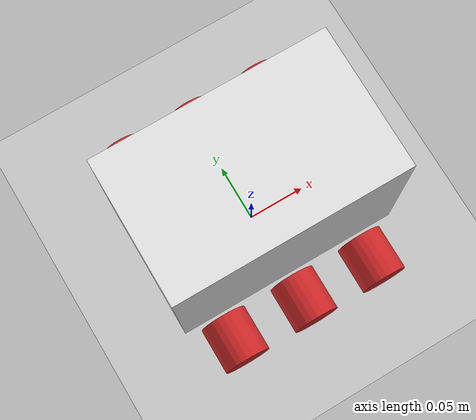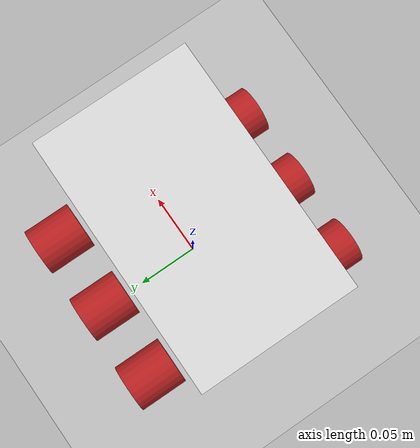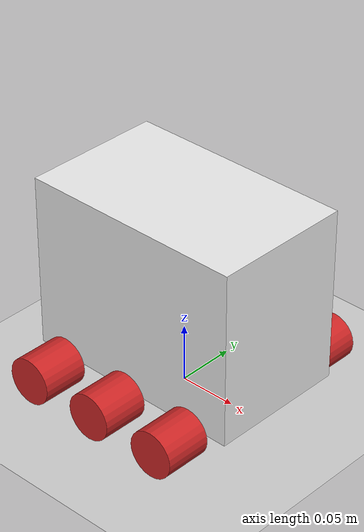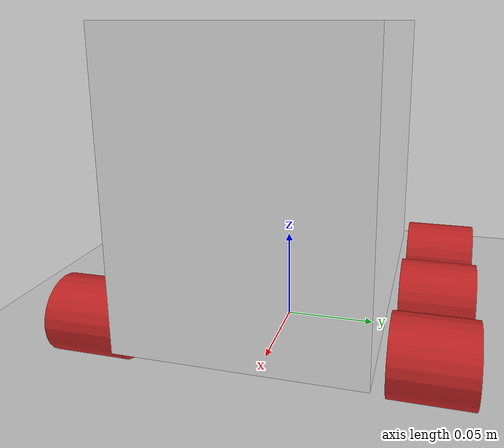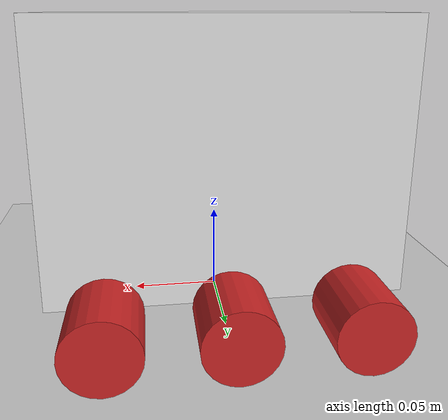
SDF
<sdf version="1.7">
 <world name="default">
  <light name="sun" type="directional">
   <pose>0 0 10 0 -0 0</pose>
   <diffuse>0.8 0.8 0.8 1</diffuse>
   <specular>0.2 0.2 0.2 1</specular>
   <attenuation>
    <range>1000</range>
    <constant>0.9</constant>
    <linear>0.01</linear>
    <quadratic>0.001</quadratic>
   </attenuation>
   <direction>-0.5 0.1 -0.9</direction>
   <spot><inner_angle>0</inner_angle><outer_angle>0</outer_angle><falloff>0</falloff></spot>
  </light>
  <model name="ground_plane">
   <static>1</static>
   <link name="link">
    <collision name="collision">
     <geometry><plane><normal>0 0 1</normal><size>100 100</size></plane></geometry>
     <surface>
      <contact><collide_bitmask>65535</collide_bitmask></contact>
      <friction><ode><mu>100</mu><mu2>50</mu2></ode></friction>
     </surface>
    </collision>
    <visual name="visual">
     <cast_shadows>0</cast_shadows>
     <geometry><plane><normal>0 0 1</normal><size>100 100</size></plane></geometry>
     <material>
      <script><uri>file://media/materials/scripts/gazebo.material</uri><name>Gazebo/Grey</name></script>
     </material>
    </visual>
   </link>
  </model>
  <gravity>0 0 -9.8</gravity>
  <magnetic_field>6e-06 2.3e-05 -4.2e-05</magnetic_field>
  <atmosphere type="adiabatic"/>
  <physics type="ode">
   <max_step_size>0.001</max_step_size>
   <real_time_factor>1</real_time_factor>
   <real_time_update_rate>1000</real_time_update_rate>
  </physics>
  <scene><ambient>0.4 0.4 0.4 1</ambient><background>0.7 0.7 0.7 1</background><shadows>1</shadows></scene>
  <audio><device>default</device></audio>
  <spherical_coordinates>
   <surface_model>EARTH_WGS84</surface_model>
   <latitude_deg>0</latitude_deg>
   <longitude_deg>0</longitude_deg>
   <elevation>0</elevation>
   <heading_deg>0</heading_deg>
  </spherical_coordinates>
  <model name="my_bot">
   <link name="base_link">
    <inertial>
     <pose>-0 0 0.041667 0 -0 0</pose>
     <mass>0.9</mass>
     <inertia>
      <ixx>0.00577083</ixx>
      <ixy>0.001105</ixy>
      <ixz>-3.61401e-20</ixz>
      <iyy>0.00469687</iyy>
      <iyz>9.44256e-22</iyz>
      <izz>0.00601271</izz>
     </inertia>
    </inertial>
    <collision name="base_link_fixed_joint_lump__back_left_wheel_collision">
     <pose>-0.065 0.085 0 -1.5708 0 0</pose>
     <geometry><cylinder><length>0.04</length><radius>0.02</radius></cylinder></geometry>
    </collision>
    <collision name="base_link_fixed_joint_lump__chassis_collision_1">
     <pose>0 0 0.075 0 -0 0</pose>
     <geometry><box><size>0.195 0.12 0.15</size></box></geometry>
    </collision>
    <collision name="base_link_fixed_joint_lump__front_right_wheel_collision_2">
     <pose>0.065 -0.085 0 1.5708 -0 0</pose>
     <geometry><cylinder><length>0.04</length><radius>0.02</radius></cylinder></geometry>
    </collision>
    <collision name="base_link_fixed_joint_lump__left_wheel_collision_3">
     <pose>0 0.085 0 -1.5708 0 0</pose>
     <geometry><cylinder><length>0.04</length><radius>0.02</radius></cylinder></geometry>
    </collision>
    <collision name="base_link_fixed_joint_lump__right_wheel_collision_4">
     <pose>0 -0.085 0 1.5708 -0 0</pose>
     <geometry><cylinder><length>0.04</length><radius>0.02</radius></cylinder></geometry>
    </collision>
    <visual name="base_link_fixed_joint_lump__back_left_wheel_visual">
     <pose>-0.065 0.085 0 -1.5708 0 0</pose>
     <geometry><cylinder><length>0.04</length><radius>0.02</radius></cylinder></geometry>
     <material>
      <script><name>Gazebo/Red</name><uri>file://media/materials/scripts/gazebo.material</uri></script>
     </material>
    </visual>
    <visual name="base_link_fixed_joint_lump__chassis_visual_1">
     <pose>0 0 0.075 0 -0 0</pose>
     <geometry><box><size>0.195 0.12 0.15</size></box></geometry>
     <material>
      <script><name>Gazebo/White</name><uri>file://media/materials/scripts/gazebo.material</uri></script>
     </material>
    </visual>
    <visual name="base_link_fixed_joint_lump__front_right_wheel_visual_2">
     <pose>0.065 -0.085 0 1.5708 -0 0</pose>
     <geometry><cylinder><length>0.04</length><radius>0.02</radius></cylinder></geometry>
     <material>
      <script><name>Gazebo/Red</name><uri>file://media/materials/scripts/gazebo.material</uri></script>
     </material>
    </visual>
    <visual name="base_link_fixed_joint_lump__left_wheel_visual_3">
     <pose>0 0.085 0 -1.5708 0 0</pose>
     <geometry><cylinder><length>0.04</length><radius>0.02</radius></cylinder></geometry>
     <material>
      <script><name>Gazebo/Red</name><uri>file://media/materials/scripts/gazebo.material</uri></script>
     </material>
    </visual>
    <visual name="base_link_fixed_joint_lump__right_wheel_visual_4">
     <pose>0 -0.085 0 1.5708 -0 0</pose>
     <geometry><cylinder><length>0.04</length><radius>0.02</radius></cylinder></geometry>
     <material>
      <script><name>Gazebo/Red</name><uri>file://media/materials/scripts/gazebo.material</uri></script>
     </material>
    </visual>
   </link>
   <joint name="back_right_wheel_joint" type="revolute">
    <pose relative_to="base_link">-0.065 -0.085 0 1.5708 -0 0</pose>
    <parent>base_link</parent>
    <child>back_right_wheel</child>
    <axis>
     <xyz>0 0 -1</xyz>
     <limit><lower>-1e+16</lower><upper>1e+16</upper></limit>
     <dynamics><spring_reference>0</spring_reference><spring_stiffness>0</spring_stiffness></dynamics>
    </axis>
   </joint>
   <link name="back_right_wheel">
    <pose relative_to="back_right_wheel_joint">0 0 0 0 -0 0</pose>
    <inertial>
     <mass>0.1</mass>
     <inertia>
      <ixx>2.33333e-05</ixx>
      <ixy>0</ixy>
      <ixz>0</ixz>
      <iyy>2.33333e-05</iyy>
      <iyz>0</iyz>
      <izz>2e-05</izz>
     </inertia>
    </inertial>
    <collision name="back_right_wheel_collision">
     <geometry><cylinder><length>0.04</length><radius>0.02</radius></cylinder></geometry>
    </collision>
    <visual name="back_right_wheel_visual">
     <geometry><cylinder><length>0.04</length><radius>0.02</radius></cylinder></geometry>
     <material>
      <script><name>Gazebo/Red</name><uri>file://media/materials/scripts/gazebo.material</uri></script>
     </material>
    </visual>
   </link>
   <joint name="front_left_wheel_joint" type="revolute">
    <pose relative_to="base_link">0.065 0.085 0 -1.5708 0 0</pose>
    <parent>base_link</parent>
    <child>front_left_wheel</child>
    <axis>
     <xyz>0 0 1</xyz>
     <limit><lower>-1e+16</lower><upper>1e+16</upper></limit>
     <dynamics><spring_reference>0</spring_reference><spring_stiffness>0</spring_stiffness></dynamics>
    </axis>
   </joint>
   <link name="front_left_wheel">
    <pose relative_to="front_left_wheel_joint">0 0 0 0 -0 0</pose>
    <inertial>
     <mass>0.1</mass>
     <inertia>
      <ixx>2.33333e-05</ixx>
      <ixy>0</ixy>
      <ixz>0</ixz>
      <iyy>2.33333e-05</iyy>
      <iyz>0</iyz>
      <izz>2e-05</izz>
     </inertia>
    </inertial>
    <collision name="front_left_wheel_collision">
     <geometry><cylinder><length>0.04</length><radius>0.02</radius></cylinder></geometry>
    </collision>
    <visual name="front_left_wheel_visual">
     <geometry><cylinder><length>0.04</length><radius>0.02</radius></cylinder></geometry>
     <material>
      <script><name>Gazebo/Red</name><uri>file://media/materials/scripts/gazebo.material</uri></script>
     </material>
    </visual>
   </link>
   <pose>-0.000376 -0 0.02 -5e-06 -3e-06 -0.006266</pose>
  </model>
 </world>
</sdf>
